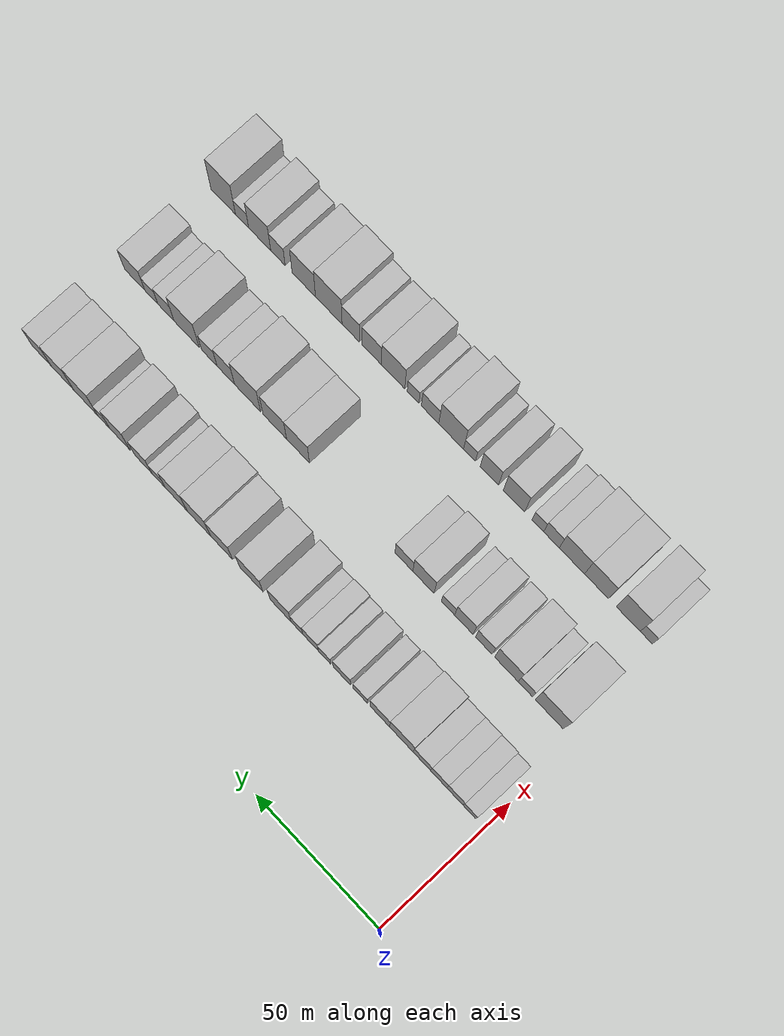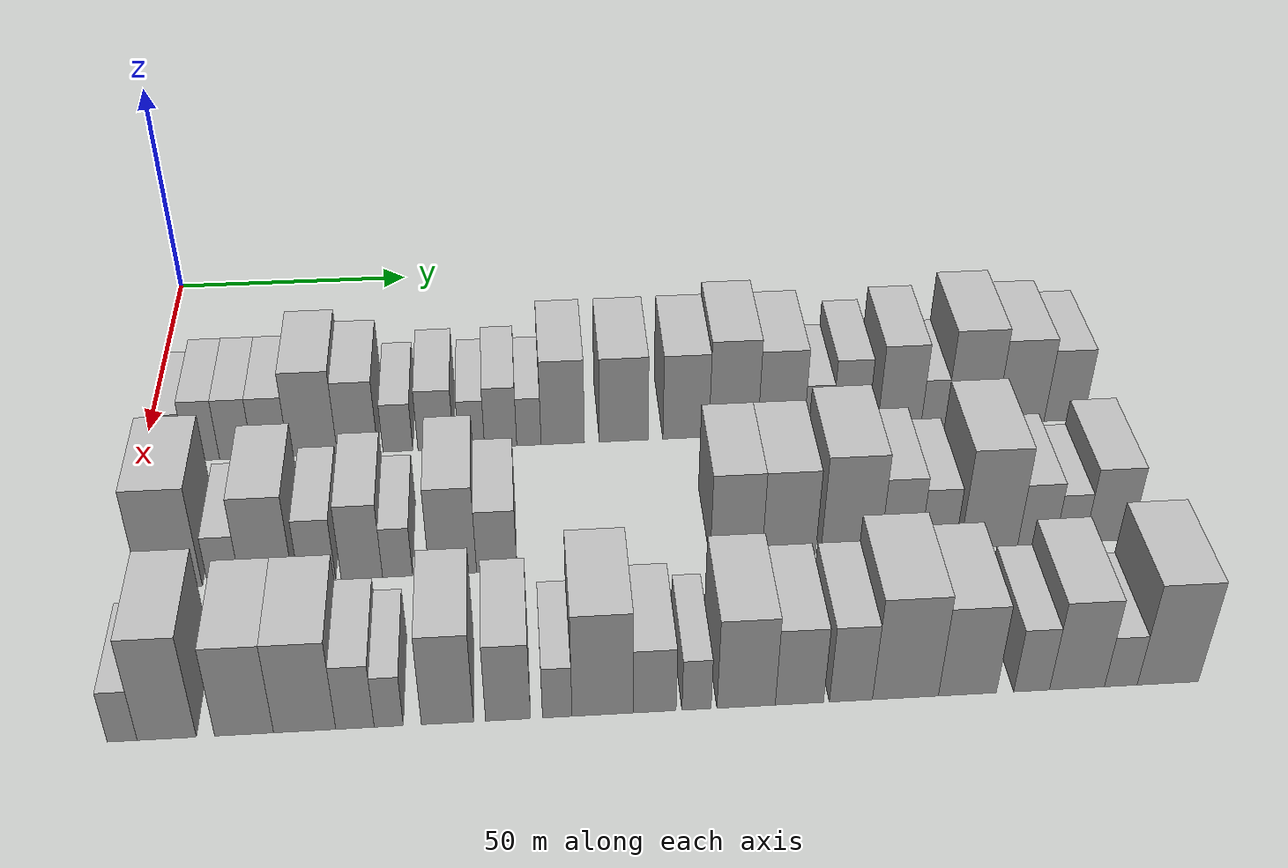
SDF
<sdf version="1.6">
 <world name="default">
  <model name="building_41">
   <static>1</static>
   <pose>50.0000 6.1950 0 0.000000 0.000000 0.000000</pose>
   <link name="link">
    <pose>0 0 6.00 0 0 0</pose>
    <collision name="collision"><geometry><box><size>20.0000 5.1251 12.0000</size></box></geometry></collision>
    <visual name="visual">
     <cast_shadows>0</cast_shadows>
     <geometry><box><size>20.0000 5.1251 12.0000</size></box></geometry>
     <material>
      <script>
       <uri>model://HANNAS_wall/materials/scripts</uri>
       <uri>model://HANNAS_wall/materials/textures</uri>
       <name>vrc/HANNAS_wall</name>
      </script>
     </material>
    </visual>
   </link>
  </model>
  <model name="building_42">
   <static>1</static>
   <pose>50.0000 11.9786 0 0.000000 0.000000 0.000000</pose>
   <link name="link">
    <pose>0 0 7.50 0 0 0</pose>
    <collision name="collision"><geometry><box><size>20.0000 6.4421 15.0000</size></box></geometry></collision>
    <visual name="visual">
     <cast_shadows>0</cast_shadows>
     <geometry><box><size>20.0000 6.4421 15.0000</size></box></geometry>
     <material>
      <script>
       <uri>model://HANNAS_wall/materials/scripts</uri>
       <uri>model://HANNAS_wall/materials/textures</uri>
       <name>vrc/HANNAS_wall</name>
      </script>
     </material>
    </visual>
   </link>
  </model>
  <model name="building_43">
   <static>1</static>
   <pose>50.0000 18.4639 0 0.000000 0.000000 0.000000</pose>
   <link name="link">
    <pose>0 0 7.50 0 0 0</pose>
    <collision name="collision"><geometry><box><size>20.0000 6.5285 15.0000</size></box></geometry></collision>
    <visual name="visual">
     <cast_shadows>0</cast_shadows>
     <geometry><box><size>20.0000 6.5285 15.0000</size></box></geometry>
     <material>
      <script>
       <uri>model://HANNAS_wall/materials/scripts</uri>
       <uri>model://HANNAS_wall/materials/textures</uri>
       <name>vrc/HANNAS_wall</name>
      </script>
     </material>
    </visual>
   </link>
  </model>
  <model name="building_44">
   <static>1</static>
   <pose>50.0000 25.2288 0 0.000000 0.000000 0.000000</pose>
   <link name="link">
    <pose>0 0 7.50 0 0 0</pose>
    <collision name="collision"><geometry><box><size>20.0000 7.0013 15.0000</size></box></geometry></collision>
    <visual name="visual">
     <cast_shadows>0</cast_shadows>
     <geometry><box><size>20.0000 7.0013 15.0000</size></box></geometry>
     <material>
      <script>
       <uri>model://HANNAS_wall/materials/scripts</uri>
       <uri>model://HANNAS_wall/materials/textures</uri>
       <name>vrc/HANNAS_wall</name>
      </script>
     </material>
    </visual>
   </link>
  </model>
  <model name="building_45">
   <static>1</static>
   <pose>50.0000 33.5426 0 0.000000 0.000000 0.000000</pose>
   <link name="link">
    <pose>0 0 10.50 0 0 0</pose>
    <collision name="collision"><geometry><box><size>20.0000 9.6263 21.0000</size></box></geometry></collision>
    <visual name="visual">
     <cast_shadows>0</cast_shadows>
     <geometry><box><size>20.0000 9.6263 21.0000</size></box></geometry>
     <material>
      <script>
       <uri>model://HANNAS_wall/materials/scripts</uri>
       <uri>model://HANNAS_wall/materials/textures</uri>
       <name>vrc/HANNAS_wall</name>
      </script>
     </material>
    </visual>
   </link>
  </model>
  <model name="building_46">
   <static>1</static>
   <pose>50.0000 42.3673 0 0.000000 0.000000 0.000000</pose>
   <link name="link">
    <pose>0 0 9.00 0 0 0</pose>
    <collision name="collision"><geometry><box><size>20.0000 8.0232 18.0000</size></box></geometry></collision>
    <visual name="visual">
     <cast_shadows>0</cast_shadows>
     <geometry><box><size>20.0000 8.0232 18.0000</size></box></geometry>
     <material>
      <script>
       <uri>model://HANNAS_wall/materials/scripts</uri>
       <uri>model://HANNAS_wall/materials/textures</uri>
       <name>vrc/HANNAS_wall</name>
      </script>
     </material>
    </visual>
   </link>
  </model>
  <model name="building_47">
   <static>1</static>
   <pose>50.0000 50.3440 0 0.000000 0.000000 0.000000</pose>
   <link name="link">
    <pose>0 0 6.00 0 0 0</pose>
    <collision name="collision"><geometry><box><size>20.0000 5.9301 12.0000</size></box></geometry></collision>
    <visual name="visual">
     <cast_shadows>0</cast_shadows>
     <geometry><box><size>20.0000 5.9301 12.0000</size></box></geometry>
     <material>
      <script>
       <uri>model://HANNAS_wall/materials/scripts</uri>
       <uri>model://HANNAS_wall/materials/textures</uri>
       <name>vrc/HANNAS_wall</name>
      </script>
     </material>
    </visual>
   </link>
  </model>
  <model name="building_48">
   <static>1</static>
   <pose>50.0000 57.8671 0 0.000000 0.000000 0.000000</pose>
   <link name="link">
    <pose>0 0 7.50 0 0 0</pose>
    <collision name="collision"><geometry><box><size>20.0000 7.1160 15.0000</size></box></geometry></collision>
    <visual name="visual">
     <cast_shadows>0</cast_shadows>
     <geometry><box><size>20.0000 7.1160 15.0000</size></box></geometry>
     <material>
      <script>
       <uri>model://HANNAS_wall/materials/scripts</uri>
       <uri>model://HANNAS_wall/materials/textures</uri>
       <name>vrc/HANNAS_wall</name>
      </script>
     </material>
    </visual>
   </link>
  </model>
  <model name="building_49">
   <static>1</static>
   <pose>50.0000 64.9874 0 0.000000 0.000000 0.000000</pose>
   <link name="link">
    <pose>0 0 6.00 0 0 0</pose>
    <collision name="collision"><geometry><box><size>20.0000 5.1248 12.0000</size></box></geometry></collision>
    <visual name="visual">
     <cast_shadows>0</cast_shadows>
     <geometry><box><size>20.0000 5.1248 12.0000</size></box></geometry>
     <material>
      <script>
       <uri>model://HANNAS_wall/materials/scripts</uri>
       <uri>model://HANNAS_wall/materials/textures</uri>
       <name>vrc/HANNAS_wall</name>
      </script>
     </material>
    </visual>
   </link>
  </model>
  <model name="building_50">
   <static>1</static>
   <pose>50.0000 70.7639 0 0.000000 0.000000 0.000000</pose>
   <link name="link">
    <pose>0 0 7.50 0 0 0</pose>
    <collision name="collision"><geometry><box><size>20.0000 6.4280 15.0000</size></box></geometry></collision>
    <visual name="visual">
     <cast_shadows>0</cast_shadows>
     <geometry><box><size>20.0000 6.4280 15.0000</size></box></geometry>
     <material>
      <script>
       <uri>model://HANNAS_wall/materials/scripts</uri>
       <uri>model://HANNAS_wall/materials/textures</uri>
       <name>vrc/HANNAS_wall</name>
      </script>
     </material>
    </visual>
   </link>
  </model>
  <model name="building_51">
   <static>1</static>
   <pose>50.0000 76.4098 0 0.000000 0.000000 0.000000</pose>
   <link name="link">
    <pose>0 0 6.00 0 0 0</pose>
    <collision name="collision"><geometry><box><size>20.0000 4.8638 12.0000</size></box></geometry></collision>
    <visual name="visual">
     <cast_shadows>0</cast_shadows>
     <geometry><box><size>20.0000 4.8638 12.0000</size></box></geometry>
     <material>
      <script>
       <uri>model://HANNAS_wall/materials/scripts</uri>
       <uri>model://HANNAS_wall/materials/textures</uri>
       <name>vrc/HANNAS_wall</name>
      </script>
     </material>
    </visual>
   </link>
  </model>
  <model name="building_52">
   <static>1</static>
   <pose>50.0000 83.1823 0 0.000000 0.000000 0.000000</pose>
   <link name="link">
    <pose>0 0 10.50 0 0 0</pose>
    <collision name="collision"><geometry><box><size>20.0000 8.6812 21.0000</size></box></geometry></collision>
    <visual name="visual">
     <cast_shadows>0</cast_shadows>
     <geometry><box><size>20.0000 8.6812 21.0000</size></box></geometry>
     <material>
      <script>
       <uri>model://HANNAS_wall/materials/scripts</uri>
       <uri>model://HANNAS_wall/materials/textures</uri>
       <name>vrc/HANNAS_wall</name>
      </script>
     </material>
    </visual>
   </link>
  </model>
  <model name="building_53">
   <static>1</static>
   <pose>50.0000 95.4053 0 0.000000 0.000000 0.000000</pose>
   <link name="link">
    <pose>0 0 10.50 0 0 0</pose>
    <collision name="collision"><geometry><box><size>20.0000 9.7649 21.0000</size></box></geometry></collision>
    <visual name="visual">
     <cast_shadows>0</cast_shadows>
     <geometry><box><size>20.0000 9.7649 21.0000</size></box></geometry>
     <material>
      <script>
       <uri>model://HANNAS_wall/materials/scripts</uri>
       <uri>model://HANNAS_wall/materials/textures</uri>
       <name>vrc/HANNAS_wall</name>
      </script>
     </material>
    </visual>
   </link>
  </model>
  <model name="building_54">
   <static>1</static>
   <pose>50.0000 107.9294 0 0.000000 0.000000 0.000000</pose>
   <link name="link">
    <pose>0 0 10.50 0 0 0</pose>
    <collision name="collision"><geometry><box><size>20.0000 9.2832 21.0000</size></box></geometry></collision>
    <visual name="visual">
     <cast_shadows>0</cast_shadows>
     <geometry><box><size>20.0000 9.2832 21.0000</size></box></geometry>
     <material>
      <script>
       <uri>model://HANNAS_wall/materials/scripts</uri>
       <uri>model://HANNAS_wall/materials/textures</uri>
       <name>vrc/HANNAS_wall</name>
      </script>
     </material>
    </visual>
   </link>
  </model>
  <model name="building_55">
   <static>1</static>
   <pose>50.0000 117.5048 0 0.000000 0.000000 0.000000</pose>
   <link name="link">
    <pose>0 0 12.00 0 0 0</pose>
    <collision name="collision"><geometry><box><size>20.0000 9.8676 24.0000</size></box></geometry></collision>
    <visual name="visual">
     <cast_shadows>0</cast_shadows>
     <geometry><box><size>20.0000 9.8676 24.0000</size></box></geometry>
     <material>
      <script>
       <uri>model://HANNAS_wall/materials/scripts</uri>
       <uri>model://HANNAS_wall/materials/textures</uri>
       <name>vrc/HANNAS_wall</name>
      </script>
     </material>
    </visual>
   </link>
  </model>
  <model name="building_56">
   <static>1</static>
   <pose>50.0000 127.1332 0 0.000000 0.000000 0.000000</pose>
   <link name="link">
    <pose>0 0 10.50 0 0 0</pose>
    <collision name="collision"><geometry><box><size>20.0000 9.3893 21.0000</size></box></geometry></collision>
    <visual name="visual">
     <cast_shadows>0</cast_shadows>
     <geometry><box><size>20.0000 9.3893 21.0000</size></box></geometry>
     <material>
      <script>
       <uri>model://HANNAS_wall/materials/scripts</uri>
       <uri>model://HANNAS_wall/materials/textures</uri>
       <name>vrc/HANNAS_wall</name>
      </script>
     </material>
    </visual>
   </link>
  </model>
  <model name="building_57">
   <static>1</static>
   <pose>50.0000 134.6720 0 0.000000 0.000000 0.000000</pose>
   <link name="link">
    <pose>0 0 6.00 0 0 0</pose>
    <collision name="collision"><geometry><box><size>20.0000 5.6883 12.0000</size></box></geometry></collision>
    <visual name="visual">
     <cast_shadows>0</cast_shadows>
     <geometry><box><size>20.0000 5.6883 12.0000</size></box></geometry>
     <material>
      <script>
       <uri>model://HANNAS_wall/materials/scripts</uri>
       <uri>model://HANNAS_wall/materials/textures</uri>
       <name>vrc/HANNAS_wall</name>
      </script>
     </material>
    </visual>
   </link>
  </model>
  <model name="building_58">
   <static>1</static>
   <pose>50.0000 141.1566 0 0.000000 0.000000 0.000000</pose>
   <link name="link">
    <pose>0 0 9.00 0 0 0</pose>
    <collision name="collision"><geometry><box><size>20.0000 7.2809 18.0000</size></box></geometry></collision>
    <visual name="visual">
     <cast_shadows>0</cast_shadows>
     <geometry><box><size>20.0000 7.2809 18.0000</size></box></geometry>
     <material>
      <script>
       <uri>model://HANNAS_wall/materials/scripts</uri>
       <uri>model://HANNAS_wall/materials/textures</uri>
       <name>vrc/HANNAS_wall</name>
      </script>
     </material>
    </visual>
   </link>
  </model>
  <model name="building_59">
   <static>1</static>
   <pose>50.0000 151.2535 0 0.000000 0.000000 0.000000</pose>
   <link name="link">
    <pose>0 0 10.50 0 0 0</pose>
    <collision name="collision"><geometry><box><size>20.0000 8.9128 21.0000</size></box></geometry></collision>
    <visual name="visual">
     <cast_shadows>0</cast_shadows>
     <geometry><box><size>20.0000 8.9128 21.0000</size></box></geometry>
     <material>
      <script>
       <uri>model://HANNAS_wall/materials/scripts</uri>
       <uri>model://HANNAS_wall/materials/textures</uri>
       <name>vrc/HANNAS_wall</name>
      </script>
     </material>
    </visual>
   </link>
  </model>
  <model name="building_60">
   <static>1</static>
   <pose>50.0000 158.1866 0 0.000000 0.000000 0.000000</pose>
   <link name="link">
    <pose>0 0 6.00 0 0 0</pose>
    <collision name="collision"><geometry><box><size>20.0000 4.9535 12.0000</size></box></geometry></collision>
    <visual name="visual">
     <cast_shadows>0</cast_shadows>
     <geometry><box><size>20.0000 4.9535 12.0000</size></box></geometry>
     <material>
      <script>
       <uri>model://HANNAS_wall/materials/scripts</uri>
       <uri>model://HANNAS_wall/materials/textures</uri>
       <name>vrc/HANNAS_wall</name>
      </script>
     </material>
    </visual>
   </link>
  </model>
  <model name="building_61">
   <static>1</static>
   <pose>50.0000 165.9094 0 0.000000 0.000000 0.000000</pose>
   <link name="link">
    <pose>0 0 12.00 0 0 0</pose>
    <collision name="collision"><geometry><box><size>20.0000 10.4921 24.0000</size></box></geometry></collision>
    <visual name="visual">
     <cast_shadows>0</cast_shadows>
     <geometry><box><size>20.0000 10.4921 24.0000</size></box></geometry>
     <material>
      <script>
       <uri>model://HANNAS_wall/materials/scripts</uri>
       <uri>model://HANNAS_wall/materials/textures</uri>
       <name>vrc/HANNAS_wall</name>
      </script>
     </material>
    </visual>
   </link>
  </model>
  <model name="building_62">
   <static>1</static>
   <pose>50.0000 176.1283 0 0.000000 0.000000 0.000000</pose>
   <link name="link">
    <pose>0 0 10.50 0 0 0</pose>
    <collision name="collision"><geometry><box><size>20.0000 9.9456 21.0000</size></box></geometry></collision>
    <visual name="visual">
     <cast_shadows>0</cast_shadows>
     <geometry><box><size>20.0000 9.9456 21.0000</size></box></geometry>
     <material>
      <script>
       <uri>model://HANNAS_wall/materials/scripts</uri>
       <uri>model://HANNAS_wall/materials/textures</uri>
       <name>vrc/HANNAS_wall</name>
      </script>
     </material>
    </visual>
   </link>
  </model>
  <model name="building_63">
   <static>1</static>
   <pose>50.0000 185.1918 0 0.000000 0.000000 0.000000</pose>
   <link name="link">
    <pose>0 0 9.00 0 0 0</pose>
    <collision name="collision"><geometry><box><size>20.0000 8.1815 18.0000</size></box></geometry></collision>
    <visual name="visual">
     <cast_shadows>0</cast_shadows>
     <geometry><box><size>20.0000 8.1815 18.0000</size></box></geometry>
     <material>
      <script>
       <uri>model://HANNAS_wall/materials/scripts</uri>
       <uri>model://HANNAS_wall/materials/textures</uri>
       <name>vrc/HANNAS_wall</name>
      </script>
     </material>
    </visual>
   </link>
  </model>
  <model name="building_125">
   <static>1</static>
   <pose>85.0000 10.3853 0 0.000000 0.000000 0.000000</pose>
   <link name="link">
    <pose>0 0 12.00 0 0 0</pose>
    <collision name="collision"><geometry><box><size>20.0000 11.2641 24.0000</size></box></geometry></collision>
    <visual name="visual">
     <cast_shadows>0</cast_shadows>
     <geometry><box><size>20.0000 11.2641 24.0000</size></box></geometry>
     <material>
      <script>
       <uri>model://HANNAS_wall/materials/scripts</uri>
       <uri>model://HANNAS_wall/materials/textures</uri>
       <name>vrc/HANNAS_wall</name>
      </script>
     </material>
    </visual>
   </link>
  </model>
  <model name="building_126">
   <static>1</static>
   <pose>85.0000 19.9096 0 0.000000 0.000000 0.000000</pose>
   <link name="link">
    <pose>0 0 6.00 0 0 0</pose>
    <collision name="collision"><geometry><box><size>20.0000 5.7844 12.0000</size></box></geometry></collision>
    <visual name="visual">
     <cast_shadows>0</cast_shadows>
     <geometry><box><size>20.0000 5.7844 12.0000</size></box></geometry>
     <material>
      <script>
       <uri>model://HANNAS_wall/materials/scripts</uri>
       <uri>model://HANNAS_wall/materials/textures</uri>
       <name>vrc/HANNAS_wall</name>
      </script>
     </material>
    </visual>
   </link>
  </model>
  <model name="building_127">
   <static>1</static>
   <pose>85.0000 27.5996 0 0.000000 0.000000 0.000000</pose>
   <link name="link">
    <pose>0 0 10.50 0 0 0</pose>
    <collision name="collision"><geometry><box><size>20.0000 9.5958 21.0000</size></box></geometry></collision>
    <visual name="visual">
     <cast_shadows>0</cast_shadows>
     <geometry><box><size>20.0000 9.5958 21.0000</size></box></geometry>
     <material>
      <script>
       <uri>model://HANNAS_wall/materials/scripts</uri>
       <uri>model://HANNAS_wall/materials/textures</uri>
       <name>vrc/HANNAS_wall</name>
      </script>
     </material>
    </visual>
   </link>
  </model>
  <model name="building_128">
   <static>1</static>
   <pose>85.0000 36.7520 0 0.000000 0.000000 0.000000</pose>
   <link name="link">
    <pose>0 0 7.50 0 0 0</pose>
    <collision name="collision"><geometry><box><size>20.0000 6.7089 15.0000</size></box></geometry></collision>
    <visual name="visual">
     <cast_shadows>0</cast_shadows>
     <geometry><box><size>20.0000 6.7089 15.0000</size></box></geometry>
     <material>
      <script>
       <uri>model://HANNAS_wall/materials/scripts</uri>
       <uri>model://HANNAS_wall/materials/textures</uri>
       <name>vrc/HANNAS_wall</name>
      </script>
     </material>
    </visual>
   </link>
  </model>
  <model name="building_129">
   <static>1</static>
   <pose>85.0000 44.8708 0 0.000000 0.000000 0.000000</pose>
   <link name="link">
    <pose>0 0 9.00 0 0 0</pose>
    <collision name="collision"><geometry><box><size>20.0000 7.5288 18.0000</size></box></geometry></collision>
    <visual name="visual">
     <cast_shadows>0</cast_shadows>
     <geometry><box><size>20.0000 7.5288 18.0000</size></box></geometry>
     <material>
      <script>
       <uri>model://HANNAS_wall/materials/scripts</uri>
       <uri>model://HANNAS_wall/materials/textures</uri>
       <name>vrc/HANNAS_wall</name>
      </script>
     </material>
    </visual>
   </link>
  </model>
  <model name="building_130">
   <static>1</static>
   <pose>85.0000 51.3800 0 0.000000 0.000000 0.000000</pose>
   <link name="link">
    <pose>0 0 6.00 0 0 0</pose>
    <collision name="collision"><geometry><box><size>20.0000 5.4895 12.0000</size></box></geometry></collision>
    <visual name="visual">
     <cast_shadows>0</cast_shadows>
     <geometry><box><size>20.0000 5.4895 12.0000</size></box></geometry>
     <material>
      <script>
       <uri>model://HANNAS_wall/materials/scripts</uri>
       <uri>model://HANNAS_wall/materials/textures</uri>
       <name>vrc/HANNAS_wall</name>
      </script>
     </material>
    </visual>
   </link>
  </model>
  <model name="building_131">
   <static>1</static>
   <pose>85.0000 61.4741 0 0.000000 0.000000 0.000000</pose>
   <link name="link">
    <pose>0 0 10.50 0 0 0</pose>
    <collision name="collision"><geometry><box><size>20.0000 8.6987 21.0000</size></box></geometry></collision>
    <visual name="visual">
     <cast_shadows>0</cast_shadows>
     <geometry><box><size>20.0000 8.6987 21.0000</size></box></geometry>
     <material>
      <script>
       <uri>model://HANNAS_wall/materials/scripts</uri>
       <uri>model://HANNAS_wall/materials/textures</uri>
       <name>vrc/HANNAS_wall</name>
      </script>
     </material>
    </visual>
   </link>
  </model>
  <model name="building_132">
   <static>1</static>
   <pose>85.0000 69.5190 0 0.000000 0.000000 0.000000</pose>
   <link name="link">
    <pose>0 0 7.50 0 0 0</pose>
    <collision name="collision"><geometry><box><size>20.0000 7.3911 15.0000</size></box></geometry></collision>
    <visual name="visual">
     <cast_shadows>0</cast_shadows>
     <geometry><box><size>20.0000 7.3911 15.0000</size></box></geometry>
     <material>
      <script>
       <uri>model://HANNAS_wall/materials/scripts</uri>
       <uri>model://HANNAS_wall/materials/textures</uri>
       <name>vrc/HANNAS_wall</name>
      </script>
     </material>
    </visual>
   </link>
  </model>
  <model name="building_133">
   <static>1</static>
   <pose>85.0000 113.7450 0 0.000000 0.000000 0.000000</pose>
   <link name="link">
    <pose>0 0 10.50 0 0 0</pose>
    <collision name="collision"><geometry><box><size>20.0000 9.6870 21.0000</size></box></geometry></collision>
    <visual name="visual">
     <cast_shadows>0</cast_shadows>
     <geometry><box><size>20.0000 9.6870 21.0000</size></box></geometry>
     <material>
      <script>
       <uri>model://HANNAS_wall/materials/scripts</uri>
       <uri>model://HANNAS_wall/materials/textures</uri>
       <name>vrc/HANNAS_wall</name>
      </script>
     </material>
    </visual>
   </link>
  </model>
  <model name="building_134">
   <static>1</static>
   <pose>85.0000 123.5696 0 0.000000 0.000000 0.000000</pose>
   <link name="link">
    <pose>0 0 10.50 0 0 0</pose>
    <collision name="collision"><geometry><box><size>20.0000 9.9623 21.0000</size></box></geometry></collision>
    <visual name="visual">
     <cast_shadows>0</cast_shadows>
     <geometry><box><size>20.0000 9.9623 21.0000</size></box></geometry>
     <material>
      <script>
       <uri>model://HANNAS_wall/materials/scripts</uri>
       <uri>model://HANNAS_wall/materials/textures</uri>
       <name>vrc/HANNAS_wall</name>
      </script>
     </material>
    </visual>
   </link>
  </model>
  <model name="building_135">
   <static>1</static>
   <pose>85.0000 135.1166 0 0.000000 0.000000 0.000000</pose>
   <link name="link">
    <pose>0 0 12.00 0 0 0</pose>
    <collision name="collision"><geometry><box><size>20.0000 11.1317 24.0000</size></box></geometry></collision>
    <visual name="visual">
     <cast_shadows>0</cast_shadows>
     <geometry><box><size>20.0000 11.1317 24.0000</size></box></geometry>
     <material>
      <script>
       <uri>model://HANNAS_wall/materials/scripts</uri>
       <uri>model://HANNAS_wall/materials/textures</uri>
       <name>vrc/HANNAS_wall</name>
      </script>
     </material>
    </visual>
   </link>
  </model>
  <model name="building_136">
   <static>1</static>
   <pose>85.0000 144.4341 0 0.000000 0.000000 0.000000</pose>
   <link name="link">
    <pose>0 0 9.00 0 0 0</pose>
    <collision name="collision"><geometry><box><size>20.0000 7.5032 18.0000</size></box></geometry></collision>
    <visual name="visual">
     <cast_shadows>0</cast_shadows>
     <geometry><box><size>20.0000 7.5032 18.0000</size></box></geometry>
     <material>
      <script>
       <uri>model://HANNAS_wall/materials/scripts</uri>
       <uri>model://HANNAS_wall/materials/textures</uri>
       <name>vrc/HANNAS_wall</name>
      </script>
     </material>
    </visual>
   </link>
  </model>
  <model name="building_137">
   <static>1</static>
   <pose>85.0000 151.4910 0 0.000000 0.000000 0.000000</pose>
   <link name="link">
    <pose>0 0 7.50 0 0 0</pose>
    <collision name="collision"><geometry><box><size>20.0000 6.6108 15.0000</size></box></geometry></collision>
    <visual name="visual">
     <cast_shadows>0</cast_shadows>
     <geometry><box><size>20.0000 6.6108 15.0000</size></box></geometry>
     <material>
      <script>
       <uri>model://HANNAS_wall/materials/scripts</uri>
       <uri>model://HANNAS_wall/materials/textures</uri>
       <name>vrc/HANNAS_wall</name>
      </script>
     </material>
    </visual>
   </link>
  </model>
  <model name="building_138">
   <static>1</static>
   <pose>85.0000 161.2479 0 0.000000 0.000000 0.000000</pose>
   <link name="link">
    <pose>0 0 12.00 0 0 0</pose>
    <collision name="collision"><geometry><box><size>20.0000 10.9029 24.0000</size></box></geometry></collision>
    <visual name="visual">
     <cast_shadows>0</cast_shadows>
     <geometry><box><size>20.0000 10.9029 24.0000</size></box></geometry>
     <material>
      <script>
       <uri>model://HANNAS_wall/materials/scripts</uri>
       <uri>model://HANNAS_wall/materials/textures</uri>
       <name>vrc/HANNAS_wall</name>
      </script>
     </material>
    </visual>
   </link>
  </model>
  <model name="building_139">
   <static>1</static>
   <pose>85.0000 170.2475 0 0.000000 0.000000 0.000000</pose>
   <link name="link">
    <pose>0 0 7.50 0 0 0</pose>
    <collision name="collision"><geometry><box><size>20.0000 7.0962 15.0000</size></box></geometry></collision>
    <visual name="visual">
     <cast_shadows>0</cast_shadows>
     <geometry><box><size>20.0000 7.0962 15.0000</size></box></geometry>
     <material>
      <script>
       <uri>model://HANNAS_wall/materials/scripts</uri>
       <uri>model://HANNAS_wall/materials/textures</uri>
       <name>vrc/HANNAS_wall</name>
      </script>
     </material>
    </visual>
   </link>
  </model>
  <model name="building_140">
   <static>1</static>
   <pose>85.0000 176.6112 0 0.000000 0.000000 0.000000</pose>
   <link name="link">
    <pose>0 0 6.00 0 0 0</pose>
    <collision name="collision"><geometry><box><size>20.0000 5.6312 12.0000</size></box></geometry></collision>
    <visual name="visual">
     <cast_shadows>0</cast_shadows>
     <geometry><box><size>20.0000 5.6312 12.0000</size></box></geometry>
     <material>
      <script>
       <uri>model://HANNAS_wall/materials/scripts</uri>
       <uri>model://HANNAS_wall/materials/textures</uri>
       <name>vrc/HANNAS_wall</name>
      </script>
     </material>
    </visual>
   </link>
  </model>
  <model name="building_141">
   <static>1</static>
   <pose>85.0000 183.8491 0 0.000000 0.000000 0.000000</pose>
   <link name="link">
    <pose>0 0 9.00 0 0 0</pose>
    <collision name="collision"><geometry><box><size>20.0000 8.8448 18.0000</size></box></geometry></collision>
    <visual name="visual">
     <cast_shadows>0</cast_shadows>
     <geometry><box><size>20.0000 8.8448 18.0000</size></box></geometry>
     <material>
      <script>
       <uri>model://HANNAS_wall/materials/scripts</uri>
       <uri>model://HANNAS_wall/materials/textures</uri>
       <name>vrc/HANNAS_wall</name>
      </script>
     </material>
    </visual>
   </link>
  </model>
  <model name="building_201">
   <static>1</static>
   <pose>120.0000 7.0430 0 0.000000 0.000000 0.000000</pose>
   <link name="link">
    <pose>0 0 6.00 0 0 0</pose>
    <collision name="collision"><geometry><box><size>20.0000 4.9078 12.0000</size></box></geometry></collision>
    <visual name="visual">
     <cast_shadows>0</cast_shadows>
     <geometry><box><size>20.0000 4.9078 12.0000</size></box></geometry>
     <material>
      <script>
       <uri>model://HANNAS_wall/materials/scripts</uri>
       <uri>model://HANNAS_wall/materials/textures</uri>
       <name>vrc/HANNAS_wall</name>
      </script>
     </material>
    </visual>
   </link>
  </model>
  <model name="building_202">
   <static>1</static>
   <pose>120.0000 14.3467 0 0.000000 0.000000 0.000000</pose>
   <link name="link">
    <pose>0 0 12.00 0 0 0</pose>
    <collision name="collision"><geometry><box><size>20.0000 9.6995 24.0000</size></box></geometry></collision>
    <visual name="visual">
     <cast_shadows>0</cast_shadows>
     <geometry><box><size>20.0000 9.6995 24.0000</size></box></geometry>
     <material>
      <script>
       <uri>model://HANNAS_wall/materials/scripts</uri>
       <uri>model://HANNAS_wall/materials/textures</uri>
       <name>vrc/HANNAS_wall</name>
      </script>
     </material>
    </visual>
   </link>
  </model>
  <model name="building_203">
   <static>1</static>
   <pose>120.0000 27.0556 0 0.000000 0.000000 0.000000</pose>
   <link name="link">
    <pose>0 0 10.50 0 0 0</pose>
    <collision name="collision"><geometry><box><size>20.0000 9.7184 21.0000</size></box></geometry></collision>
    <visual name="visual">
     <cast_shadows>0</cast_shadows>
     <geometry><box><size>20.0000 9.7184 21.0000</size></box></geometry>
     <material>
      <script>
       <uri>model://HANNAS_wall/materials/scripts</uri>
       <uri>model://HANNAS_wall/materials/textures</uri>
       <name>vrc/HANNAS_wall</name>
      </script>
     </material>
    </visual>
   </link>
  </model>
  <model name="building_204">
   <static>1</static>
   <pose>120.0000 37.0593 0 0.000000 0.000000 0.000000</pose>
   <link name="link">
    <pose>0 0 10.50 0 0 0</pose>
    <collision name="collision"><geometry><box><size>20.0000 10.2890 21.0000</size></box></geometry></collision>
    <visual name="visual">
     <cast_shadows>0</cast_shadows>
     <geometry><box><size>20.0000 10.2890 21.0000</size></box></geometry>
     <material>
      <script>
       <uri>model://HANNAS_wall/materials/scripts</uri>
       <uri>model://HANNAS_wall/materials/textures</uri>
       <name>vrc/HANNAS_wall</name>
      </script>
     </material>
    </visual>
   </link>
  </model>
  <model name="building_205">
   <static>1</static>
   <pose>120.0000 45.3953 0 0.000000 0.000000 0.000000</pose>
   <link name="link">
    <pose>0 0 7.50 0 0 0</pose>
    <collision name="collision"><geometry><box><size>20.0000 6.3830 15.0000</size></box></geometry></collision>
    <visual name="visual">
     <cast_shadows>0</cast_shadows>
     <geometry><box><size>20.0000 6.3830 15.0000</size></box></geometry>
     <material>
      <script>
       <uri>model://HANNAS_wall/materials/scripts</uri>
       <uri>model://HANNAS_wall/materials/textures</uri>
       <name>vrc/HANNAS_wall</name>
      </script>
     </material>
    </visual>
   </link>
  </model>
  <model name="building_206">
   <static>1</static>
   <pose>120.0000 51.0022 0 0.000000 0.000000 0.000000</pose>
   <link name="link">
    <pose>0 0 6.00 0 0 0</pose>
    <collision name="collision"><geometry><box><size>20.0000 4.8309 12.0000</size></box></geometry></collision>
    <visual name="visual">
     <cast_shadows>0</cast_shadows>
     <geometry><box><size>20.0000 4.8309 12.0000</size></box></geometry>
     <material>
      <script>
       <uri>model://HANNAS_wall/materials/scripts</uri>
       <uri>model://HANNAS_wall/materials/textures</uri>
       <name>vrc/HANNAS_wall</name>
      </script>
     </material>
    </visual>
   </link>
  </model>
  <model name="building_207">
   <static>1</static>
   <pose>120.0000 60.7858 0 0.000000 0.000000 0.000000</pose>
   <link name="link">
    <pose>0 0 10.50 0 0 0</pose>
    <collision name="collision"><geometry><box><size>20.0000 8.7362 21.0000</size></box></geometry></collision>
    <visual name="visual">
     <cast_shadows>0</cast_shadows>
     <geometry><box><size>20.0000 8.7362 21.0000</size></box></geometry>
     <material>
      <script>
       <uri>model://HANNAS_wall/materials/scripts</uri>
       <uri>model://HANNAS_wall/materials/textures</uri>
       <name>vrc/HANNAS_wall</name>
      </script>
     </material>
    </visual>
   </link>
  </model>
  <model name="building_208">
   <static>1</static>
   <pose>120.0000 70.9248 0 0.000000 0.000000 0.000000</pose>
   <link name="link">
    <pose>0 0 9.00 0 0 0</pose>
    <collision name="collision"><geometry><box><size>20.0000 7.5419 18.0000</size></box></geometry></collision>
    <visual name="visual">
     <cast_shadows>0</cast_shadows>
     <geometry><box><size>20.0000 7.5419 18.0000</size></box></geometry>
     <material>
      <script>
       <uri>model://HANNAS_wall/materials/scripts</uri>
       <uri>model://HANNAS_wall/materials/textures</uri>
       <name>vrc/HANNAS_wall</name>
      </script>
     </material>
    </visual>
   </link>
  </model>
  <model name="building_209">
   <static>1</static>
   <pose>120.0000 79.1715 0 0.000000 0.000000 0.000000</pose>
   <link name="link">
    <pose>0 0 6.00 0 0 0</pose>
    <collision name="collision"><geometry><box><size>20.0000 4.9515 12.0000</size></box></geometry></collision>
    <visual name="visual">
     <cast_shadows>0</cast_shadows>
     <geometry><box><size>20.0000 4.9515 12.0000</size></box></geometry>
     <material>
      <script>
       <uri>model://HANNAS_wall/materials/scripts</uri>
       <uri>model://HANNAS_wall/materials/textures</uri>
       <name>vrc/HANNAS_wall</name>
      </script>
     </material>
    </visual>
   </link>
  </model>
  <model name="building_210">
   <static>1</static>
   <pose>120.0000 86.7874 0 0.000000 0.000000 0.000000</pose>
   <link name="link">
    <pose>0 0 12.00 0 0 0</pose>
    <collision name="collision"><geometry><box><size>20.0000 10.2804 24.0000</size></box></geometry></collision>
    <visual name="visual">
     <cast_shadows>0</cast_shadows>
     <geometry><box><size>20.0000 10.2804 24.0000</size></box></geometry>
     <material>
      <script>
       <uri>model://HANNAS_wall/materials/scripts</uri>
       <uri>model://HANNAS_wall/materials/textures</uri>
       <name>vrc/HANNAS_wall</name>
      </script>
     </material>
    </visual>
   </link>
  </model>
  <model name="building_211">
   <static>1</static>
   <pose>120.0000 95.5724 0 0.000000 0.000000 0.000000</pose>
   <link name="link">
    <pose>0 0 7.50 0 0 0</pose>
    <collision name="collision"><geometry><box><size>20.0000 7.2896 15.0000</size></box></geometry></collision>
    <visual name="visual">
     <cast_shadows>0</cast_shadows>
     <geometry><box><size>20.0000 7.2896 15.0000</size></box></geometry>
     <material>
      <script>
       <uri>model://HANNAS_wall/materials/scripts</uri>
       <uri>model://HANNAS_wall/materials/textures</uri>
       <name>vrc/HANNAS_wall</name>
      </script>
     </material>
    </visual>
   </link>
  </model>
  <model name="building_212">
   <static>1</static>
   <pose>120.0000 102.6856 0 0.000000 0.000000 0.000000</pose>
   <link name="link">
    <pose>0 0 6.00 0 0 0</pose>
    <collision name="collision"><geometry><box><size>20.0000 4.9367 12.0000</size></box></geometry></collision>
    <visual name="visual">
     <cast_shadows>0</cast_shadows>
     <geometry><box><size>20.0000 4.9367 12.0000</size></box></geometry>
     <material>
      <script>
       <uri>model://HANNAS_wall/materials/scripts</uri>
       <uri>model://HANNAS_wall/materials/textures</uri>
       <name>vrc/HANNAS_wall</name>
      </script>
     </material>
    </visual>
   </link>
  </model>
  <model name="building_213">
   <static>1</static>
   <pose>120.0000 111.1140 0 0.000000 0.000000 0.000000</pose>
   <link name="link">
    <pose>0 0 10.50 0 0 0</pose>
    <collision name="collision"><geometry><box><size>20.0000 9.9199 21.0000</size></box></geometry></collision>
    <visual name="visual">
     <cast_shadows>0</cast_shadows>
     <geometry><box><size>20.0000 9.9199 21.0000</size></box></geometry>
     <material>
      <script>
       <uri>model://HANNAS_wall/materials/scripts</uri>
       <uri>model://HANNAS_wall/materials/textures</uri>
       <name>vrc/HANNAS_wall</name>
      </script>
     </material>
    </visual>
   </link>
  </model>
  <model name="building_214">
   <static>1</static>
   <pose>120.0000 120.1937 0 0.000000 0.000000 0.000000</pose>
   <link name="link">
    <pose>0 0 9.00 0 0 0</pose>
    <collision name="collision"><geometry><box><size>20.0000 8.2396 18.0000</size></box></geometry></collision>
    <visual name="visual">
     <cast_shadows>0</cast_shadows>
     <geometry><box><size>20.0000 8.2396 18.0000</size></box></geometry>
     <material>
      <script>
       <uri>model://HANNAS_wall/materials/scripts</uri>
       <uri>model://HANNAS_wall/materials/textures</uri>
       <name>vrc/HANNAS_wall</name>
      </script>
     </material>
    </visual>
   </link>
  </model>
  <model name="building_215">
   <static>1</static>
   <pose>120.0000 129.0071 0 0.000000 0.000000 0.000000</pose>
   <link name="link">
    <pose>0 0 9.00 0 0 0</pose>
    <collision name="collision"><geometry><box><size>20.0000 7.3871 18.0000</size></box></geometry></collision>
    <visual name="visual">
     <cast_shadows>0</cast_shadows>
     <geometry><box><size>20.0000 7.3871 18.0000</size></box></geometry>
     <material>
      <script>
       <uri>model://HANNAS_wall/materials/scripts</uri>
       <uri>model://HANNAS_wall/materials/textures</uri>
       <name>vrc/HANNAS_wall</name>
      </script>
     </material>
    </visual>
   </link>
  </model>
  <model name="building_216">
   <static>1</static>
   <pose>120.0000 138.3723 0 0.000000 0.000000 0.000000</pose>
   <link name="link">
    <pose>0 0 12.00 0 0 0</pose>
    <collision name="collision"><geometry><box><size>20.0000 11.3433 24.0000</size></box></geometry></collision>
    <visual name="visual">
     <cast_shadows>0</cast_shadows>
     <geometry><box><size>20.0000 11.3433 24.0000</size></box></geometry>
     <material>
      <script>
       <uri>model://HANNAS_wall/materials/scripts</uri>
       <uri>model://HANNAS_wall/materials/textures</uri>
       <name>vrc/HANNAS_wall</name>
      </script>
     </material>
    </visual>
   </link>
  </model>
  <model name="building_217">
   <static>1</static>
   <pose>120.0000 149.0514 0 0.000000 0.000000 0.000000</pose>
   <link name="link">
    <pose>0 0 10.50 0 0 0</pose>
    <collision name="collision"><geometry><box><size>20.0000 10.0148 21.0000</size></box></geometry></collision>
    <visual name="visual">
     <cast_shadows>0</cast_shadows>
     <geometry><box><size>20.0000 10.0148 21.0000</size></box></geometry>
     <material>
      <script>
       <uri>model://HANNAS_wall/materials/scripts</uri>
       <uri>model://HANNAS_wall/materials/textures</uri>
       <name>vrc/HANNAS_wall</name>
      </script>
     </material>
    </visual>
   </link>
  </model>
  <model name="building_218">
   <static>1</static>
   <pose>120.0000 160.1640 0 0.000000 0.000000 0.000000</pose>
   <link name="link">
    <pose>0 0 7.50 0 0 0</pose>
    <collision name="collision"><geometry><box><size>20.0000 6.2106 15.0000</size></box></geometry></collision>
    <visual name="visual">
     <cast_shadows>0</cast_shadows>
     <geometry><box><size>20.0000 6.2106 15.0000</size></box></geometry>
     <material>
      <script>
       <uri>model://HANNAS_wall/materials/scripts</uri>
       <uri>model://HANNAS_wall/materials/textures</uri>
       <name>vrc/HANNAS_wall</name>
      </script>
     </material>
    </visual>
   </link>
  </model>
  <model name="building_219">
   <static>1</static>
   <pose>120.0000 168.0505 0 0.000000 0.000000 0.000000</pose>
   <link name="link">
    <pose>0 0 10.50 0 0 0</pose>
    <collision name="collision"><geometry><box><size>20.0000 9.5623 21.0000</size></box></geometry></collision>
    <visual name="visual">
     <cast_shadows>0</cast_shadows>
     <geometry><box><size>20.0000 9.5623 21.0000</size></box></geometry>
     <material>
      <script>
       <uri>model://HANNAS_wall/materials/scripts</uri>
       <uri>model://HANNAS_wall/materials/textures</uri>
       <name>vrc/HANNAS_wall</name>
      </script>
     </material>
    </visual>
   </link>
  </model>
  <model name="building_220">
   <static>1</static>
   <pose>120.0000 175.6885 0 0.000000 0.000000 0.000000</pose>
   <link name="link">
    <pose>0 0 6.00 0 0 0</pose>
    <collision name="collision"><geometry><box><size>20.0000 5.7138 12.0000</size></box></geometry></collision>
    <visual name="visual">
     <cast_shadows>0</cast_shadows>
     <geometry><box><size>20.0000 5.7138 12.0000</size></box></geometry>
     <material>
      <script>
       <uri>model://HANNAS_wall/materials/scripts</uri>
       <uri>model://HANNAS_wall/materials/textures</uri>
       <name>vrc/HANNAS_wall</name>
      </script>
     </material>
    </visual>
   </link>
  </model>
  <model name="building_221">
   <static>1</static>
   <pose>120.0000 183.8909 0 0.000000 0.000000 0.000000</pose>
   <link name="link">
    <pose>0 0 12.00 0 0 0</pose>
    <collision name="collision"><geometry><box><size>20.0000 10.6910 24.0000</size></box></geometry></collision>
    <visual name="visual">
     <cast_shadows>0</cast_shadows>
     <geometry><box><size>20.0000 10.6910 24.0000</size></box></geometry>
     <material>
      <script>
       <uri>model://HANNAS_wall/materials/scripts</uri>
       <uri>model://HANNAS_wall/materials/textures</uri>
       <name>vrc/HANNAS_wall</name>
      </script>
     </material>
    </visual>
   </link>
  </model>
 </world>
</sdf>
